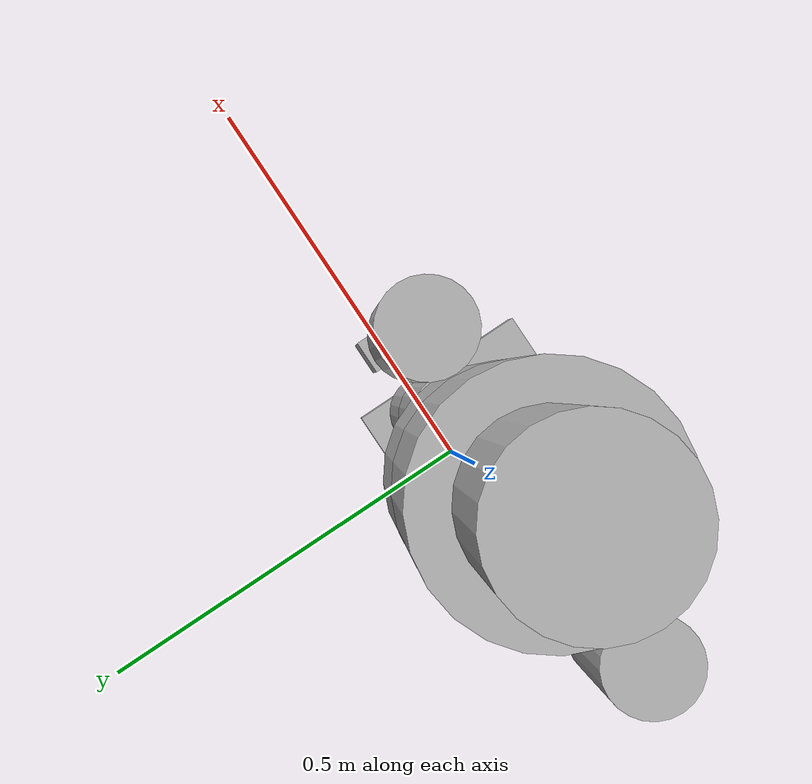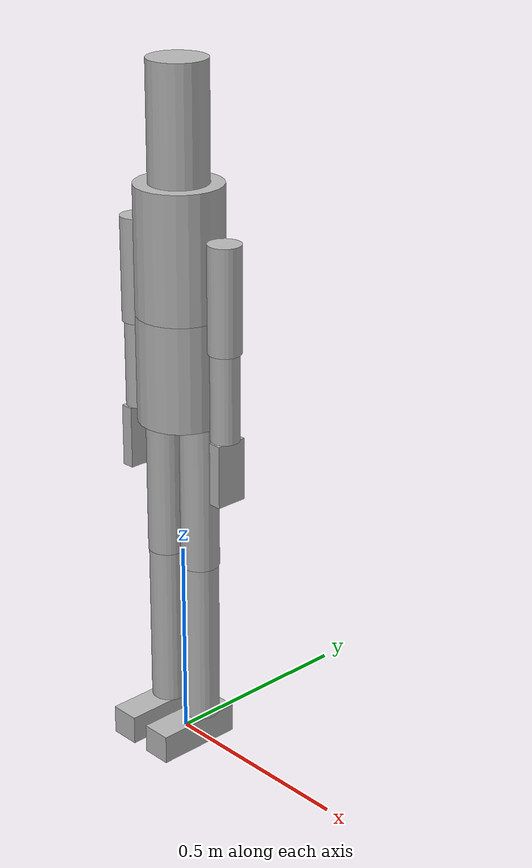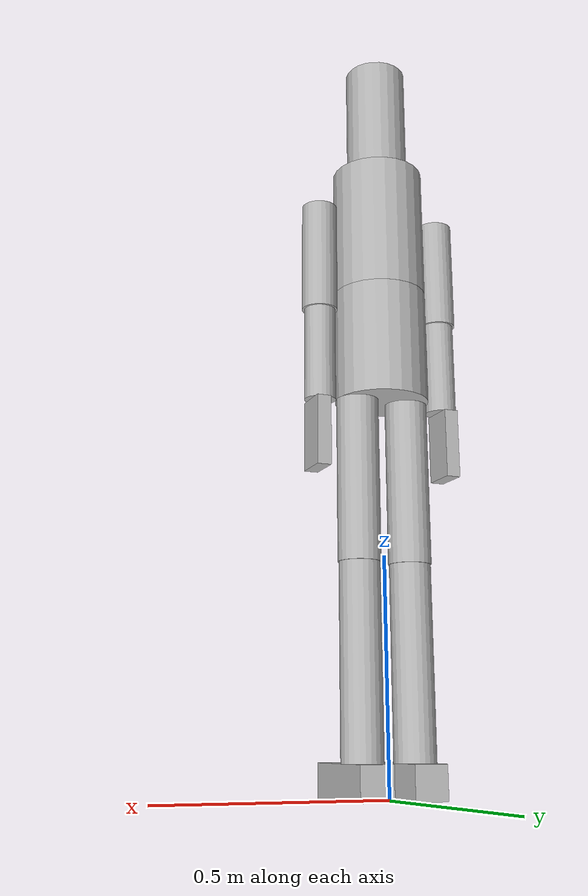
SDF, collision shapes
<?xml version="1.0"?>
<sdf version="1.4">
  <model name="man">
    <static>false</static>

    <link name="arm_l">
		<pose>0.150 0 1.307 0 0 0</pose>
      <collision name = "collision">
				<pose>0 0 -0.1279 0 0 0</pose>
        <geometry>
          <cylinder>
            <radius>0.04</radius>
            <length>0.2558</length>
          </cylinder>
        </geometry>
      </collision>
      <visual name="visual">
        <geometry>
          <mesh>
            <uri>model://man/meshes/arm_l.dae</uri>
          </mesh>
        </geometry>
      </visual>
		</link>

    <link name="arm_r">
		<pose>-0.150 0 1.307 0 0 0</pose>
      <collision name = "collision">
				<pose>0 0 -0.1279 0 0 0</pose>
        <geometry>
          <cylinder>
            <radius>0.04</radius>
            <length>0.2558</length>
          </cylinder>
        </geometry>
      </collision>
      <visual name="visual">
        <geometry>
          <mesh>
            <uri>model://man/meshes/arm_r.dae</uri>
          </mesh>
        </geometry>
      </visual>
		</link>

    <link name="body">
		<pose>0 0 1.107 0 0 0</pose>
      <collision name = "collision">
				<pose>0 0 0.15385 0 0 0</pose>
        <geometry>
          <cylinder>
            <radius>0.105</radius>
            <length>0.3077</length>
          </cylinder>
        </geometry>
      </collision>
      <visual name="visual">
        <geometry>
          <mesh>
            <uri>model://man/meshes/body.dae</uri>
          </mesh>
        </geometry>
      </visual>
		</link>

    <link name="feet_l">
		<pose>0.06 0 0 0 0 0</pose>
      <collision name = "collision">
				<pose>0 -0.04 0.0361 0 0 0</pose>
        <geometry>
          <box>
						<size>0.0745 0.2212 0.0722</size>
					</box>
        </geometry>
      </collision>
      <visual name="visual">
        <geometry>
          <mesh>
            <uri>model://man/meshes/feet_l.dae</uri>
          </mesh>
        </geometry>
      </visual>
		</link>

    <link name="feet_r">
		<pose>-0.06 0 0 0 0 0</pose>
      <collision name = "collision">
				<pose>0 -0.04 0.0361 0 0 0</pose>
        <geometry>
          <box>
						<size>0.0745 0.2212 0.0722</size>
					</box>
        </geometry>
      </collision>
      <visual name="visual">
        <geometry>
          <mesh>
            <uri>model://man/meshes/feet_r.dae</uri>
          </mesh>
        </geometry>
      </visual>
		</link>

		<link name="forearm_l">
		<pose>0.150 0 1.0512 0 0 0</pose>
      <collision name = "collision">
				<pose>0 0 -0.10695 0 0 0</pose>
        <geometry>
          <cylinder>
            <radius>0.035</radius>
            <length>0.2139</length>
          </cylinder>
        </geometry>
      </collision>
      <visual name="visual">
        <geometry>
          <mesh>
            <uri>model://man/meshes/forearm_l.dae</uri>
          </mesh>
        </geometry>
      </visual>
		</link>

		<link name="forearm_r">
		<pose>-0.150 0 1.0512 0 0 0</pose>
      <collision name = "collision">
				<pose>0 0 -0.10695 0 0 0</pose>
        <geometry>
          <cylinder>
            <radius>0.035</radius>
            <length>0.2139</length>
          </cylinder>
        </geometry>
      </collision>
      <visual name="visual">
        <geometry>
          <mesh>
            <uri>model://man/meshes/forearm_r.dae</uri>
          </mesh>
        </geometry>
      </visual>
		</link>

		<link name="hand_l">
		<pose>0.150 0 0.8373 0 0 0</pose>
      <collision name = "collision">
				<pose>0.006 0 -0.0775 0 0 0</pose>
        <geometry>
          <box>
						<size>0.032 0.079 0.155</size>
					</box>
        </geometry>
      </collision>
      <visual name="visual">
        <geometry>
          <mesh>
            <uri>model://man/meshes/hand_l.dae</uri>
          </mesh>
        </geometry>
      </visual>
		</link>

		<link name="hand_r">
		<pose>-0.150 0 0.8373 0 0 0</pose>
      <collision name = "collision">
				<pose>-0.006 0 -0.0775 0 0 0</pose>
        <geometry>
          <box>
						<size>0.032 0.079 0.155</size>
					</box>
        </geometry>
      </collision>
      <visual name="visual">
        <geometry>
          <mesh>
            <uri>model://man/meshes/hand_r.dae</uri>
          </mesh>
        </geometry>
      </visual>
		</link>

		<link name="head">
		<pose>0 0 1.414 0 0 0</pose>
      <collision name = "collision">
				<pose>0 0 0.14 0 0 0</pose>
        <geometry>
          <cylinder>
            <radius>0.071</radius>
            <length>0.28</length>
          </cylinder>
        </geometry>
      </collision>
      <visual name="visual">
        <geometry>
          <mesh>
            <uri>model://man/meshes/head.dae</uri>
          </mesh>
        </geometry>
      </visual>
		</link>

		<link name="leg_r">
		<pose>-0.06 0 0.0722 0 0 0</pose>
      <collision name = "collision">
				<pose>0 0 0.2058 0 0 0</pose>
        <geometry>
          <cylinder>
            <radius>0.045</radius>
            <length>0.4116</length>
          </cylinder>
        </geometry>
      </collision>
      <visual name="visual">
        <geometry>
          <mesh>
            <uri>model://man/meshes/leg_r.dae</uri>
          </mesh>
        </geometry>
      </visual>
		</link>

		<link name="leg_l">
		<pose>0.06 0 0.0722 0 0 0</pose>
      <collision name = "collision">
				<pose>0 0 0.2058 0 0 0</pose>
        <geometry>
          <cylinder>
            <radius>0.045</radius>
            <length>0.4116</length>
          </cylinder>
        </geometry>
      </collision>
      <visual name="visual">
        <geometry>
          <mesh>
            <uri>model://man/meshes/leg_l.dae</uri>
          </mesh>
        </geometry>
      </visual>
		</link>

		<link name="thigh_l">
		<pose>0.06 0 0.4837 0 0 0</pose>
      <collision name = "collision">
				<pose>0 0 0.1816 0 0 0</pose>
        <geometry>
          <cylinder>
            <radius>0.047</radius>
            <length>0.3632</length>
          </cylinder>
        </geometry>
      </collision>
      <visual name="visual">
        <geometry>
          <mesh>
            <uri>model://man/meshes/thigh_l.dae</uri>
          </mesh>
        </geometry>
      </visual>
		</link>

		<link name="thigh_r">
		<pose>-0.06 0 0.4837 0 0 0</pose>
      <collision name = "collision">
				<pose>0 0 0.1816 0 0 0</pose>
        <geometry>
          <cylinder>
            <radius>0.047</radius>
            <length>0.3632</length>
          </cylinder>
        </geometry>
      </collision>
      <visual name="visual">
        <geometry>
          <mesh>
            <uri>model://man/meshes/thigh_r.dae</uri>
          </mesh>
        </geometry>
      </visual>
		</link>

		<link name="waist">
		<pose>0 0 0.847 0 0 0</pose>
      <collision name = "collision">
				<pose>0 0 0.13 0 0 0</pose>
        <geometry>
          <cylinder>
            <radius>0.105</radius>
            <length>0.260</length>
          </cylinder>
        </geometry>
      </collision>
      <visual name="visual">
        <geometry>
          <mesh>
            <uri>model://man/meshes/waist.dae</uri>
          </mesh>
        </geometry>
      </visual>
		</link>

		<joint name="leg_feet_l" type="universal">
        <pose>0 0 0.0722 0 0 0</pose>
        <child>feet_l</child>
        <parent>leg_l</parent>
				<axis>
          <xyz>1 0 0</xyz>
          <dynamics>
            <damping>50</damping>
          </dynamics>
        </axis>
				<axis2>
          <xyz>0 0 1</xyz>
          <dynamics>
            <damping>50</damping>
          </dynamics>
        </axis2>

		</joint>

		<joint name="leg_feet_r" type="universal">
        <pose>0 0 0.0722 0 0 0</pose>
        <child>feet_r</child>
        <parent>leg_r</parent>
				<axis>
          <xyz>1 0 0</xyz>
          <dynamics>
            <damping>50</damping>
          </dynamics>
        </axis>
				<axis2>
          <xyz>0 0 1</xyz>
          <dynamics>
            <damping>50</damping>
          </dynamics>
        </axis2>
		</joint>

		<joint name="thigh_leg_l" type="revolute">
        <pose>0 0 0.4116 0 0 0</pose>
        <child>leg_l</child>
        <parent>thigh_l</parent>
				<axis>
          <xyz>1 0 0</xyz>
					<limit><lower>0</lower></limit>
          <dynamics>
            <damping>50</damping>
          </dynamics>
        </axis>
		</joint>

		<joint name="thigh_leg_r" type="revolute">
        <pose>0 0 0.4116 0 0 0</pose>
        <child>leg_r</child>
        <parent>thigh_r</parent>
				<axis>
          <xyz>1 0 0</xyz>
					<limit><lower>0</lower></limit>
          <dynamics>
            <damping>50</damping>
          </dynamics>
        </axis>
		</joint>

		<joint name="waist_thigh_r" type="universal">
        <pose>0 0 0.3632 0 0 0</pose>
        <child>thigh_r</child>
        <parent>waist</parent>
				<axis>
          <xyz>1 0 0</xyz>
          <dynamics>
            <damping>50</damping>
          </dynamics>
        </axis>
				<axis2>
          <xyz>0 0 1</xyz>
          <dynamics>
            <damping>50</damping>
          </dynamics>
        </axis2>
		</joint>

		<joint name="waist_thigh_l" type="universal">
        <pose>0 0 0.3632 0 0 0</pose>
        <child>thigh_l</child>
        <parent>waist</parent>
				<axis>
          <xyz>1 0 0</xyz>
          <dynamics>
            <damping>50</damping>
          </dynamics>
        </axis>
				<axis2>
          <xyz>0 0 1</xyz>
          <dynamics>
            <damping>50</damping>
          </dynamics>
        </axis2>
		</joint>

		<joint name="waist_body" type="universal">
        <pose>0 0 0 0 0 0</pose>
        <child>body</child>
        <parent>waist</parent>
				<axis>
          <xyz>1 0 0</xyz>
					<limit>
						<upper>0.5</upper>
						<lower>-0.5</lower>
					</limit>
          <dynamics>
            <damping>50</damping>
          </dynamics>
        </axis>
				<axis2>
          <xyz>0 0 1</xyz>
					<limit>
						<upper>1.3</upper>
						<lower>-1.3</lower>
					</limit>
          <dynamics>
            <damping>50</damping>
          </dynamics>
        </axis2>
		</joint>

		<joint name="body_head" type="universal">
        <pose>0 0 0 0 0 0</pose>
        <child>head</child>
        <parent>body</parent>
				<axis>
          <xyz>1 0 0</xyz>
					<limit>
						<upper>1.3</upper>
						<lower>-1</lower>
					</limit>
          <dynamics>
            <damping>50</damping>
          </dynamics>
        </axis>
				<axis2>
          <xyz>0 0 1</xyz>
					<limit>
						<upper>1.3</upper>
						<lower>-1.3</lower>
					</limit>
          <dynamics>
            <damping>50</damping>
          </dynamics>
        </axis2>
		</joint>

		<joint name="body_arm_r" type="universal">
        <pose>0 0 0 0 0 0</pose>
        <child>arm_r</child>
        <parent>body</parent>
				<axis>
          <xyz>-1 0 0</xyz>
          <dynamics>
            <damping>50</damping>
          </dynamics>
        </axis>
				<axis2>
          <xyz>0 0 1</xyz>
          <dynamics>
            <damping>50</damping>
          </dynamics>
        </axis2>
		</joint>

		<joint name="body_arm_l" type="universal">
        <pose>0 0 0 0 0 0</pose>
        <child>arm_l</child>
        <parent>body</parent>
				<axis>
          <xyz>-1 0 0</xyz>
          <dynamics>
            <damping>50</damping>
          </dynamics>
        </axis>
				<axis2>
          <xyz>0 0 1</xyz>
          <dynamics>
            <damping>50</damping>
          </dynamics>
        </axis2>
		</joint>

		<joint name="arm_forearm_r" type="revolute">
        <pose>0 0 0 0 0 0</pose>
        <child>forearm_r</child>
        <parent>arm_r</parent>
				<axis>
          <xyz>-1 0 0</xyz>
					<limit><lower>0</lower></limit>
          <dynamics>
            <damping>50</damping>
          </dynamics>
        </axis>
		</joint>

		<joint name="arm_forearm_l" type="revolute">
        <pose>0 0 0 0 0 0</pose>
        <child>forearm_l</child>
        <parent>arm_l</parent>
				<axis>
          <xyz>-1 0 0</xyz>
					<limit><lower>0</lower></limit>
          <dynamics>
            <damping>50</damping>
          </dynamics>
        </axis>
		</joint>

		<joint name="forearm_hand_l" type="universal">
        <pose>0 0 0 0 0 0</pose>
        <child>hand_l</child>
        <parent>forearm_l</parent>
				<axis>
          <xyz>0 1 0</xyz>
					<limit>
						<upper>1.5</upper>
						<lower>-1.5</lower>
					</limit>
          <dynamics>
            <damping>50</damping>
          </dynamics>
        </axis>
				<axis2>
          <xyz>0 0 1</xyz>
					<limit>
						<upper>1.5</upper>
						<lower>-1.5</lower>
					</limit>
          <dynamics>
            <damping>50</damping>
          </dynamics>
        </axis2>
		</joint>

		<joint name="forearm_hand_r" type="universal">
        <pose>0 0 0 0 0 0</pose>
        <child>hand_r</child>
        <parent>forearm_r</parent>
				<axis>
          <xyz>0 1 0</xyz>
					<limit>
						<upper>1.5</upper>
						<lower>-1.5</lower>
					</limit>
          <dynamics>
            <damping>50</damping>
          </dynamics>
        </axis>
				<axis2>
          <xyz>0 0 1</xyz>
					<limit>
						<upper>1.5</upper>
						<lower>-1.5</lower>
					</limit>
          <dynamics>
            <damping>50</damping>
          </dynamics>
        </axis2>
		</joint>

  </model>
</sdf>
